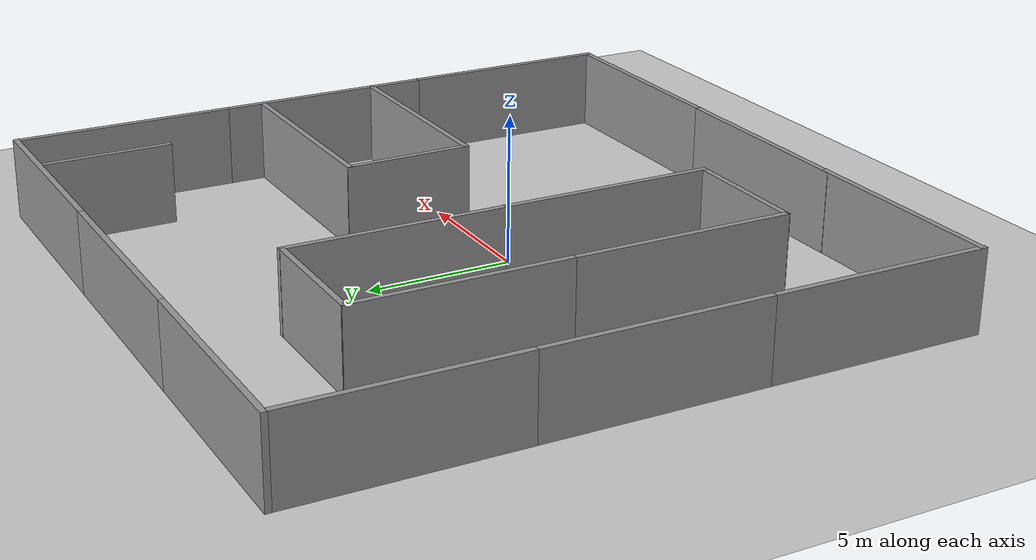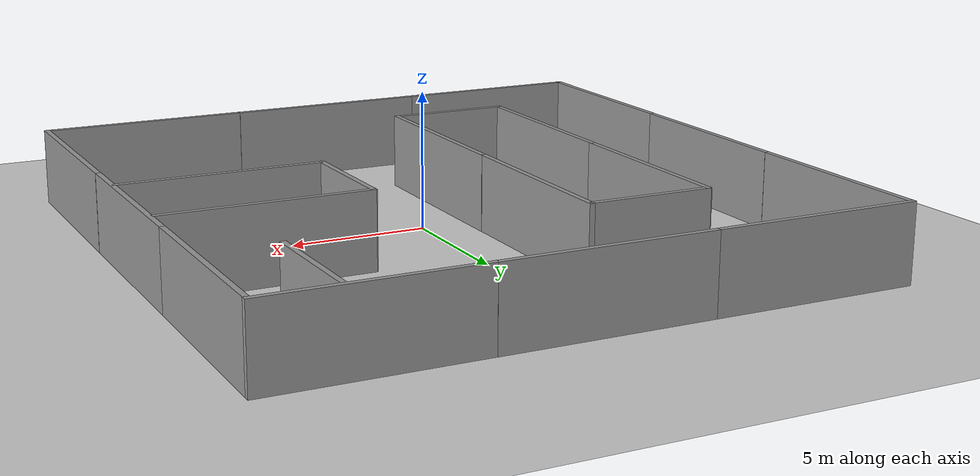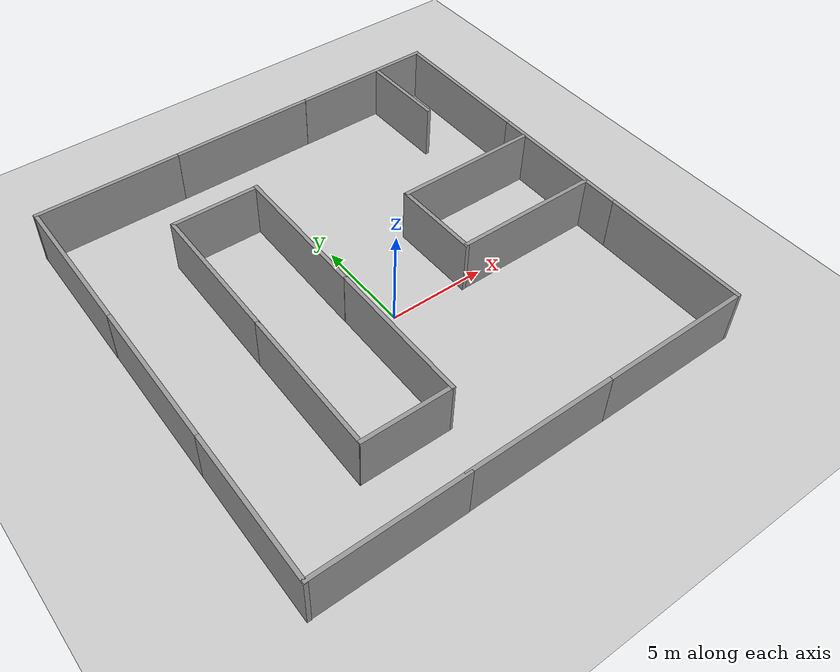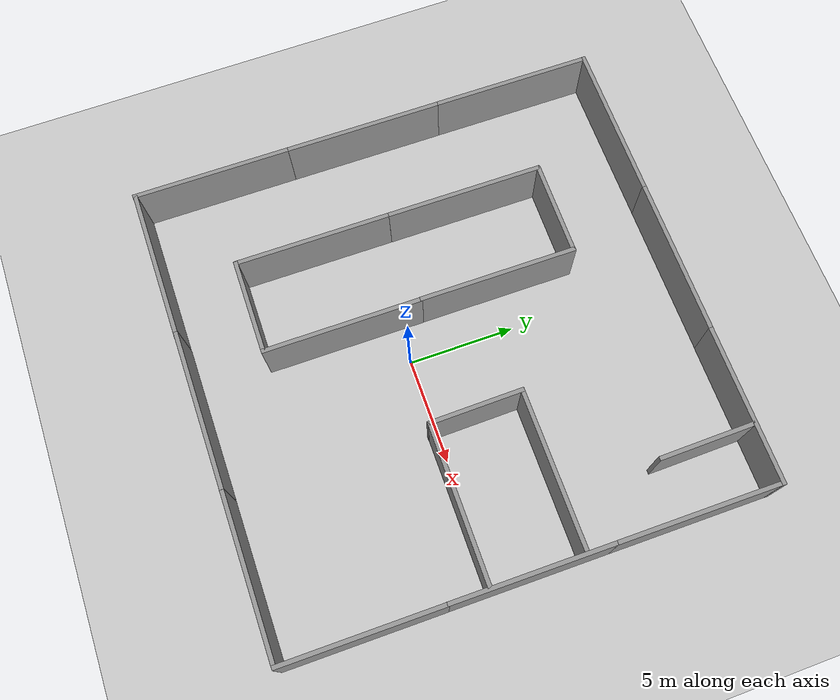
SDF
<sdf version="1.6">
 <world name="default">
  <light name="sun" type="directional">
   <pose>0 0 10 0 -0 0</pose>
   <diffuse>0.8 0.8 0.8 1</diffuse>
   <specular>0.2 0.2 0.2 1</specular>
   <attenuation>
    <range>1000</range>
    <constant>0.9</constant>
    <linear>0.01</linear>
    <quadratic>0.001</quadratic>
   </attenuation>
   <direction>-0.5 0.1 -0.9</direction>
  </light>
  <model name="ground_plane">
   <static>1</static>
   <link name="link">
    <collision name="collision">
     <geometry><plane><normal>0 0 1</normal><size>100 100</size></plane></geometry>
     <surface>
      <contact><collide_bitmask>65535</collide_bitmask></contact>
      <friction><ode><mu>100</mu><mu2>50</mu2></ode></friction>
     </surface>
    </collision>
    <visual name="visual">
     <cast_shadows>0</cast_shadows>
     <geometry><plane><normal>0 0 1</normal><size>100 100</size></plane></geometry>
     <material>
      <script><uri>file://media/materials/scripts/gazebo.material</uri><name>Gazebo/Grey</name></script>
     </material>
    </visual>
   </link>
  </model>
  <gravity>0 0 -9.8</gravity>
  <magnetic_field>6e-06 2.3e-05 -4.2e-05</magnetic_field>
  <atmosphere type="adiabatic"/>
  <physics name="default_physics" default="0" type="ode">
   <max_step_size>0.001</max_step_size>
   <real_time_factor>1</real_time_factor>
   <real_time_update_rate>1000</real_time_update_rate>
  </physics>
  <scene><ambient>0.4 0.4 0.4 1</ambient><background>0.7 0.7 0.7 1</background><shadows>1</shadows></scene>
  <audio><device>default</device></audio>
  <spherical_coordinates>
   <surface_model>EARTH_WGS84</surface_model>
   <latitude_deg>0</latitude_deg>
   <longitude_deg>0</longitude_deg>
   <elevation>0</elevation>
   <heading_deg>0</heading_deg>
  </spherical_coordinates>
  <model name="grey_wall">
   <static>1</static>
   <link name="link">
    <pose>0 0 1.4 0 -0 0</pose>
    <collision name="collision"><geometry><box><size>7.5 0.2 2.8</size></box></geometry></collision>
    <visual name="visual">
     <cast_shadows>0</cast_shadows>
     <geometry><box><size>7.5 0.2 2.8</size></box></geometry>
     <material>
      <script>
       <uri>model://grey_wall/materials/scripts</uri>
       <uri>model://grey_wall/materials/textures</uri>
       <name>vrc/grey_wall</name>
      </script>
     </material>
    </visual>
   </link>
   <pose>0.134611 12.8518 0 0 -0 0</pose>
  </model>
  <model name="grey_wall_0">
   <static>1</static>
   <link name="link">
    <pose>0 0 1.4 0 -0 0</pose>
    <collision name="collision"><geometry><box><size>7.5 0.2 2.8</size></box></geometry></collision>
    <visual name="visual">
     <cast_shadows>0</cast_shadows>
     <geometry><box><size>7.5 0.2 2.8</size></box></geometry>
     <material>
      <script>
       <uri>model://grey_wall/materials/scripts</uri>
       <uri>model://grey_wall/materials/textures</uri>
       <name>vrc/grey_wall</name>
      </script>
     </material>
    </visual>
   </link>
   <pose>7.57857 12.8449 0 0 -0 0</pose>
  </model>
  <model name="grey_wall_1">
   <static>1</static>
   <link name="link">
    <pose>0 0 1.4 0 -0 0</pose>
    <collision name="collision"><geometry><box><size>7.5 0.2 2.8</size></box></geometry></collision>
    <visual name="visual">
     <cast_shadows>0</cast_shadows>
     <geometry><box><size>7.5 0.2 2.8</size></box></geometry>
     <material>
      <script>
       <uri>model://grey_wall/materials/scripts</uri>
       <uri>model://grey_wall/materials/textures</uri>
       <name>vrc/grey_wall</name>
      </script>
     </material>
    </visual>
   </link>
   <pose>-7.35074 12.8521 0 0 -0 0</pose>
  </model>
  <model name="grey_wall_1_clone">
   <static>1</static>
   <link name="link">
    <pose>0 0 1.4 0 -0 0</pose>
    <collision name="collision"><geometry><box><size>7.5 0.2 2.8</size></box></geometry></collision>
    <visual name="visual">
     <cast_shadows>0</cast_shadows>
     <geometry><box><size>7.5 0.2 2.8</size></box></geometry>
     <material>
      <script>
       <uri>model://grey_wall/materials/scripts</uri>
       <uri>model://grey_wall/materials/textures</uri>
       <name>vrc/grey_wall</name>
      </script>
     </material>
    </visual>
   </link>
   <pose>-11.0243 9.02961 0 0 -0 1.56317</pose>
  </model>
  <model name="grey_wall_1_clone_clone">
   <static>1</static>
   <link name="link">
    <pose>0 0 1.4 0 -0 0</pose>
    <collision name="collision"><geometry><box><size>7.5 0.2 2.8</size></box></geometry></collision>
    <visual name="visual">
     <cast_shadows>0</cast_shadows>
     <geometry><box><size>7.5 0.2 2.8</size></box></geometry>
     <material>
      <script>
       <uri>model://grey_wall/materials/scripts</uri>
       <uri>model://grey_wall/materials/textures</uri>
       <name>vrc/grey_wall</name>
      </script>
     </material>
    </visual>
   </link>
   <pose>-11.0766 1.54093 0 0 -0 1.56317</pose>
  </model>
  <model name="grey_wall_1_clone_clone_0">
   <static>1</static>
   <link name="link">
    <pose>0 0 1.4 0 -0 0</pose>
    <collision name="collision"><geometry><box><size>7.5 0.2 2.8</size></box></geometry></collision>
    <visual name="visual">
     <cast_shadows>0</cast_shadows>
     <geometry><box><size>7.5 0.2 2.8</size></box></geometry>
     <material>
      <script>
       <uri>model://grey_wall/materials/scripts</uri>
       <uri>model://grey_wall/materials/textures</uri>
       <name>vrc/grey_wall</name>
      </script>
     </material>
    </visual>
   </link>
   <pose>-11.1343 -5.95856 0 0 -0 1.56317</pose>
  </model>
  <model name="grey_wall_1_clone_clone_1">
   <static>1</static>
   <link name="link">
    <pose>0 0 1.4 0 -0 0</pose>
    <collision name="collision"><geometry><box><size>7.5 0.2 2.8</size></box></geometry></collision>
    <visual name="visual">
     <cast_shadows>0</cast_shadows>
     <geometry><box><size>7.5 0.2 2.8</size></box></geometry>
     <material>
      <script>
       <uri>model://grey_wall/materials/scripts</uri>
       <uri>model://grey_wall/materials/textures</uri>
       <name>vrc/grey_wall</name>
      </script>
     </material>
    </visual>
   </link>
   <pose>11.1917 8.99167 0 0 -0 1.56317</pose>
  </model>
  <model name="grey_wall_1_clone_clone_2">
   <static>1</static>
   <link name="link">
    <pose>0 0 1.4 0 -0 0</pose>
    <collision name="collision"><geometry><box><size>7.5 0.2 2.8</size></box></geometry></collision>
    <visual name="visual">
     <cast_shadows>0</cast_shadows>
     <geometry><box><size>7.5 0.2 2.8</size></box></geometry>
     <material>
      <script>
       <uri>model://grey_wall/materials/scripts</uri>
       <uri>model://grey_wall/materials/textures</uri>
       <name>vrc/grey_wall</name>
      </script>
     </material>
    </visual>
   </link>
   <pose>11.1345 1.51593 0 0 -0 1.56317</pose>
  </model>
  <model name="grey_wall_1_clone_clone_3">
   <static>1</static>
   <link name="link">
    <pose>0 0 1.4 0 -0 0</pose>
    <collision name="collision"><geometry><box><size>7.5 0.2 2.8</size></box></geometry></collision>
    <visual name="visual">
     <cast_shadows>0</cast_shadows>
     <geometry><box><size>7.5 0.2 2.8</size></box></geometry>
     <material>
      <script>
       <uri>model://grey_wall/materials/scripts</uri>
       <uri>model://grey_wall/materials/textures</uri>
       <name>vrc/grey_wall</name>
      </script>
     </material>
    </visual>
   </link>
   <pose>11.0827 -5.9263 0 0 -0 1.56317</pose>
  </model>
  <model name="grey_wall_0_clone">
   <static>1</static>
   <link name="link">
    <pose>0 0 1.4 0 -0 0</pose>
    <collision name="collision"><geometry><box><size>7.5 0.2 2.8</size></box></geometry></collision>
    <visual name="visual">
     <cast_shadows>0</cast_shadows>
     <geometry><box><size>7.5 0.2 2.8</size></box></geometry>
     <material>
      <script>
       <uri>model://grey_wall/materials/scripts</uri>
       <uri>model://grey_wall/materials/textures</uri>
       <name>vrc/grey_wall</name>
      </script>
     </material>
    </visual>
   </link>
   <pose>7.20499 -9.57988 0 0 -0 0</pose>
  </model>
  <model name="grey_wall_0_clone_0">
   <static>1</static>
   <link name="link">
    <pose>0 0 1.4 0 -0 0</pose>
    <collision name="collision"><geometry><box><size>7.5 0.2 2.8</size></box></geometry></collision>
    <visual name="visual">
     <cast_shadows>0</cast_shadows>
     <geometry><box><size>7.5 0.2 2.8</size></box></geometry>
     <material>
      <script>
       <uri>model://grey_wall/materials/scripts</uri>
       <uri>model://grey_wall/materials/textures</uri>
       <name>vrc/grey_wall</name>
      </script>
     </material>
    </visual>
   </link>
   <pose>-0.297747 -9.57626 0 0 -0 0</pose>
  </model>
  <model name="grey_wall_0_clone_1">
   <static>1</static>
   <link name="link">
    <pose>0 0 1.4 0 -0 0</pose>
    <collision name="collision"><geometry><box><size>7.5 0.2 2.8</size></box></geometry></collision>
    <visual name="visual">
     <cast_shadows>0</cast_shadows>
     <geometry><box><size>7.5 0.2 2.8</size></box></geometry>
     <material>
      <script>
       <uri>model://grey_wall/materials/scripts</uri>
       <uri>model://grey_wall/materials/textures</uri>
       <name>vrc/grey_wall</name>
      </script>
     </material>
    </visual>
   </link>
   <pose>-7.47578 -9.58719 0 0 -0 0</pose>
  </model>
  <model name="grey_wall_0_clone_2">
   <static>1</static>
   <link name="link">
    <pose>0 0 1.4 0 -0 0</pose>
    <collision name="collision"><geometry><box><size>7.5 0.2 2.8</size></box></geometry></collision>
    <visual name="visual">
     <cast_shadows>0</cast_shadows>
     <geometry><box><size>7.5 0.2 2.8</size></box></geometry>
     <material>
      <script>
       <uri>model://grey_wall/materials/scripts</uri>
       <uri>model://grey_wall/materials/textures</uri>
       <name>vrc/grey_wall</name>
      </script>
     </material>
    </visual>
   </link>
   <pose>7.39087 -0.356167 0 0 -0 0</pose>
  </model>
  <model name="grey_wall_0_clone_3">
   <static>1</static>
   <link name="link">
    <pose>0 0 1.4 0 -0 0</pose>
    <collision name="collision"><geometry><box><size>7.5 0.2 2.8</size></box></geometry></collision>
    <visual name="visual">
     <cast_shadows>0</cast_shadows>
     <geometry><box><size>7.5 0.2 2.8</size></box></geometry>
     <material>
      <script>
       <uri>model://grey_wall/materials/scripts</uri>
       <uri>model://grey_wall/materials/textures</uri>
       <name>vrc/grey_wall</name>
      </script>
     </material>
    </visual>
   </link>
   <pose>7.34374 3.93465 0 0 -0 0</pose>
  </model>
  <model name="grey_wall_0_clone_4">
   <link name="link">
    <pose>0 0 1.4 0 -0 0</pose>
    <inertial>
     <mass>1</mass>
     <inertia><ixx>1</ixx><ixy>0</ixy><ixz>0</ixz><iyy>1</iyy><iyz>0</iyz><izz>1</izz></inertia>
    </inertial>
    <visual name="visual">
     <cast_shadows>0</cast_shadows>
     <geometry><box><size>4.5 0.2 2.8</size></box></geometry>
     <material>
      <script>
       <uri>model://grey_wall/materials/scripts</uri>
       <uri>model://grey_wall/materials/textures</uri>
       <name>vrc/grey_wall</name>
      </script>
      <shader type="vertex"><normal_map>__default__</normal_map></shader>
      <ambient>1 1 1 1</ambient>
      <diffuse>1 1 1 1</diffuse>
      <specular>0 0 0 1</specular>
      <emissive>0 0 0 1</emissive>
     </material>
    </visual>
    <collision name="collision">
     <geometry><box><size>7.5 0.2 2.8</size></box></geometry>
     <surface>
      <friction>
       <ode><mu>1</mu><mu2>1</mu2><fdir1>0 0 0</fdir1><slip1>0</slip1><slip2>0</slip2></ode>
       <torsional>
        <coefficient>1</coefficient>
        <patch_radius>0</patch_radius>
        <surface_radius>0</surface_radius>
        <use_patch_radius>1</use_patch_radius>
        <ode><slip>0</slip></ode>
       </torsional>
      </friction>
      <bounce><restitution_coefficient>0</restitution_coefficient><threshold>1e+06</threshold></bounce>
      <contact>
       <collide_without_contact>0</collide_without_contact>
       <collide_without_contact_bitmask>1</collide_without_contact_bitmask>
       <collide_bitmask>1</collide_bitmask>
       <ode>
        <soft_cfm>0</soft_cfm>
        <soft_erp>0.2</soft_erp>
        <kp>1e+13</kp>
        <kd>1</kd>
        <max_vel>0.01</max_vel>
        <min_depth>0</min_depth>
       </ode>
       <bullet>
        <split_impulse>1</split_impulse>
        <split_impulse_penetration_threshold>-0.01</split_impulse_penetration_threshold>
        <soft_cfm>0</soft_cfm>
        <soft_erp>0.2</soft_erp>
        <kp>1e+13</kp>
        <kd>1</kd>
       </bullet>
      </contact>
     </surface>
    </collision>
   </link>
   <static>1</static>
   <pose>3.68243 1.78345 0 0 -0 1.57902</pose>
  </model>
  <model name="grey_wall_1_clone_clone_3_clone">
   <static>1</static>
   <link name="link">
    <pose>0 0 1.4 0 -0 0</pose>
    <collision name="collision"><geometry><box><size>7.5 0.2 2.8</size></box></geometry></collision>
    <visual name="visual">
     <cast_shadows>0</cast_shadows>
     <geometry><box><size>7.5 0.2 2.8</size></box></geometry>
     <material>
      <script>
       <uri>model://grey_wall/materials/scripts</uri>
       <uri>model://grey_wall/materials/textures</uri>
       <name>vrc/grey_wall</name>
      </script>
     </material>
    </visual>
   </link>
   <pose>-1.84527 -2.51474 0 0 -0 1.56317</pose>
  </model>
  <model name="grey_wall_1_clone_clone_3_clone_0">
   <static>1</static>
   <link name="link">
    <pose>0 0 1.4 0 -0 0</pose>
    <collision name="collision"><geometry><box><size>7.5 0.2 2.8</size></box></geometry></collision>
    <visual name="visual">
     <cast_shadows>0</cast_shadows>
     <geometry><box><size>7.5 0.2 2.8</size></box></geometry>
     <material>
      <script>
       <uri>model://grey_wall/materials/scripts</uri>
       <uri>model://grey_wall/materials/textures</uri>
       <name>vrc/grey_wall</name>
      </script>
     </material>
    </visual>
   </link>
   <pose>-1.79871 4.90226 0 0 -0 1.56317</pose>
  </model>
  <model name="grey_wall_0_clone_4_clone">
   <link name="link">
    <pose>0 0 1.4 0 -0 0</pose>
    <inertial>
     <mass>1</mass>
     <inertia><ixx>1</ixx><ixy>0</ixy><ixz>0</ixz><iyy>1</iyy><iyz>0</iyz><izz>1</izz></inertia>
    </inertial>
    <visual name="visual">
     <cast_shadows>0</cast_shadows>
     <geometry><box><size>4.5 0.2 2.8</size></box></geometry>
     <material>
      <script>
       <uri>model://grey_wall/materials/scripts</uri>
       <uri>model://grey_wall/materials/textures</uri>
       <name>vrc/grey_wall</name>
      </script>
      <shader type="vertex"><normal_map>__default__</normal_map></shader>
      <ambient>1 1 1 1</ambient>
      <diffuse>1 1 1 1</diffuse>
      <specular>0 0 0 1</specular>
      <emissive>0 0 0 1</emissive>
     </material>
    </visual>
    <collision name="collision">
     <geometry><box><size>7.5 0.2 2.8</size></box></geometry>
     <surface>
      <friction>
       <ode><mu>1</mu><mu2>1</mu2><fdir1>0 0 0</fdir1><slip1>0</slip1><slip2>0</slip2></ode>
       <torsional>
        <coefficient>1</coefficient>
        <patch_radius>0</patch_radius>
        <surface_radius>0</surface_radius>
        <use_patch_radius>1</use_patch_radius>
        <ode><slip>0</slip></ode>
       </torsional>
      </friction>
      <bounce><restitution_coefficient>0</restitution_coefficient><threshold>1e+06</threshold></bounce>
      <contact>
       <collide_without_contact>0</collide_without_contact>
       <collide_without_contact_bitmask>1</collide_without_contact_bitmask>
       <collide_bitmask>1</collide_bitmask>
       <ode>
        <soft_cfm>0</soft_cfm>
        <soft_erp>0.2</soft_erp>
        <kp>1e+13</kp>
        <kd>1</kd>
        <max_vel>0.01</max_vel>
        <min_depth>0</min_depth>
       </ode>
       <bullet>
        <split_impulse>1</split_impulse>
        <split_impulse_penetration_threshold>-0.01</split_impulse_penetration_threshold>
        <soft_cfm>0</soft_cfm>
        <soft_erp>0.2</soft_erp>
        <kp>1e+13</kp>
        <kd>1</kd>
       </bullet>
      </contact>
     </surface>
    </collision>
   </link>
   <static>1</static>
   <pose>-4.02117 8.55914 0 0 -0 3.1349</pose>
  </model>
  <model name="grey_wall_0_clone_4_clone_clone">
   <link name="link">
    <pose>0 0 1.4 0 -0 0</pose>
    <inertial>
     <mass>1</mass>
     <inertia><ixx>1</ixx><ixy>0</ixy><ixz>0</ixz><iyy>1</iyy><iyz>0</iyz><izz>1</izz></inertia>
    </inertial>
    <visual name="visual">
     <cast_shadows>0</cast_shadows>
     <geometry><box><size>4.5 0.2 2.8</size></box></geometry>
     <material>
      <script>
       <uri>model://grey_wall/materials/scripts</uri>
       <uri>model://grey_wall/materials/textures</uri>
       <name>vrc/grey_wall</name>
      </script>
      <shader type="vertex"><normal_map>__default__</normal_map></shader>
      <ambient>1 1 1 1</ambient>
      <diffuse>1 1 1 1</diffuse>
      <specular>0 0 0 1</specular>
      <emissive>0 0 0 1</emissive>
     </material>
    </visual>
    <collision name="collision">
     <geometry><box><size>7.5 0.2 2.8</size></box></geometry>
     <surface>
      <friction>
       <ode><mu>1</mu><mu2>1</mu2><fdir1>0 0 0</fdir1><slip1>0</slip1><slip2>0</slip2></ode>
       <torsional>
        <coefficient>1</coefficient>
        <patch_radius>0</patch_radius>
        <surface_radius>0</surface_radius>
        <use_patch_radius>1</use_patch_radius>
        <ode><slip>0</slip></ode>
       </torsional>
      </friction>
      <bounce><restitution_coefficient>0</restitution_coefficient><threshold>1e+06</threshold></bounce>
      <contact>
       <collide_without_contact>0</collide_without_contact>
       <collide_without_contact_bitmask>1</collide_without_contact_bitmask>
       <collide_bitmask>1</collide_bitmask>
       <ode>
        <soft_cfm>0</soft_cfm>
        <soft_erp>0.2</soft_erp>
        <kp>1e+13</kp>
        <kd>1</kd>
        <max_vel>0.01</max_vel>
        <min_depth>0</min_depth>
       </ode>
       <bullet>
        <split_impulse>1</split_impulse>
        <split_impulse_penetration_threshold>-0.01</split_impulse_penetration_threshold>
        <soft_cfm>0</soft_cfm>
        <soft_erp>0.2</soft_erp>
        <kp>1e+13</kp>
        <kd>1</kd>
       </bullet>
      </contact>
     </surface>
    </collision>
   </link>
   <static>1</static>
   <pose>-4.152 -6.15184 0 0 -0 3.1349</pose>
  </model>
  <model name="grey_wall_1_clone_clone_3_clone_0_clone">
   <static>1</static>
   <link name="link">
    <pose>0 0 1.4 0 -0 0</pose>
    <collision name="collision"><geometry><box><size>7.5 0.2 2.8</size></box></geometry></collision>
    <visual name="visual">
     <cast_shadows>0</cast_shadows>
     <geometry><box><size>7.5 0.2 2.8</size></box></geometry>
     <material>
      <script>
       <uri>model://grey_wall/materials/scripts</uri>
       <uri>model://grey_wall/materials/textures</uri>
       <name>vrc/grey_wall</name>
      </script>
     </material>
    </visual>
   </link>
   <pose>-6.2335 4.91094 0 0 -0 1.56317</pose>
  </model>
  <model name="grey_wall_1_clone_clone_3_clone_0_clone_0">
   <static>1</static>
   <link name="link">
    <pose>0 0 1.4 0 -0 0</pose>
    <collision name="collision"><geometry><box><size>7.5 0.2 2.8</size></box></geometry></collision>
    <visual name="visual">
     <cast_shadows>0</cast_shadows>
     <geometry><box><size>7.5 0.2 2.8</size></box></geometry>
     <material>
      <script>
       <uri>model://grey_wall/materials/scripts</uri>
       <uri>model://grey_wall/materials/textures</uri>
       <name>vrc/grey_wall</name>
      </script>
     </material>
    </visual>
   </link>
   <pose>-6.29252 -2.45899 0 0 -0 1.56317</pose>
  </model>
  <model name="grey_wall_0_clone_4_clone_0">
   <link name="link">
    <pose>0 0 1.4 0 -0 0</pose>
    <inertial>
     <mass>1</mass>
     <inertia><ixx>1</ixx><ixy>0</ixy><ixz>0</ixz><iyy>1</iyy><iyz>0</iyz><izz>1</izz></inertia>
    </inertial>
    <visual name="visual">
     <cast_shadows>0</cast_shadows>
     <geometry><box><size>4.5 0.2 2.8</size></box></geometry>
     <material>
      <script>
       <uri>model://grey_wall/materials/scripts</uri>
       <uri>model://grey_wall/materials/textures</uri>
       <name>vrc/grey_wall</name>
      </script>
      <shader type="vertex"><normal_map>__default__</normal_map></shader>
      <ambient>1 1 1 1</ambient>
      <diffuse>1 1 1 1</diffuse>
      <specular>0 0 0 1</specular>
      <emissive>0 0 0 1</emissive>
     </material>
    </visual>
    <collision name="collision">
     <geometry><box><size>7.5 0.2 2.8</size></box></geometry>
     <surface>
      <friction>
       <ode><mu>1</mu><mu2>1</mu2><fdir1>0 0 0</fdir1><slip1>0</slip1><slip2>0</slip2></ode>
       <torsional>
        <coefficient>1</coefficient>
        <patch_radius>0</patch_radius>
        <surface_radius>0</surface_radius>
        <use_patch_radius>1</use_patch_radius>
        <ode><slip>0</slip></ode>
       </torsional>
      </friction>
      <bounce><restitution_coefficient>0</restitution_coefficient><threshold>1e+06</threshold></bounce>
      <contact>
       <collide_without_contact>0</collide_without_contact>
       <collide_without_contact_bitmask>1</collide_without_contact_bitmask>
       <collide_bitmask>1</collide_bitmask>
       <ode>
        <soft_cfm>0</soft_cfm>
        <soft_erp>0.2</soft_erp>
        <kp>1e+13</kp>
        <kd>1</kd>
        <max_vel>0.01</max_vel>
        <min_depth>0</min_depth>
       </ode>
       <bullet>
        <split_impulse>1</split_impulse>
        <split_impulse_penetration_threshold>-0.01</split_impulse_penetration_threshold>
        <soft_cfm>0</soft_cfm>
        <soft_erp>0.2</soft_erp>
        <kp>1e+13</kp>
        <kd>1</kd>
       </bullet>
      </contact>
     </surface>
    </collision>
   </link>
   <static>1</static>
   <pose>8.48228 10.5714 0 0 -0 1.57902</pose>
  </model>
 </world>
</sdf>
